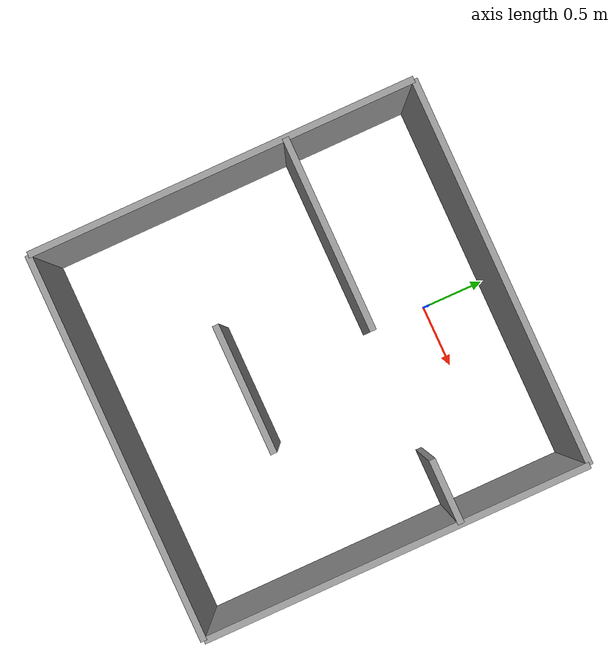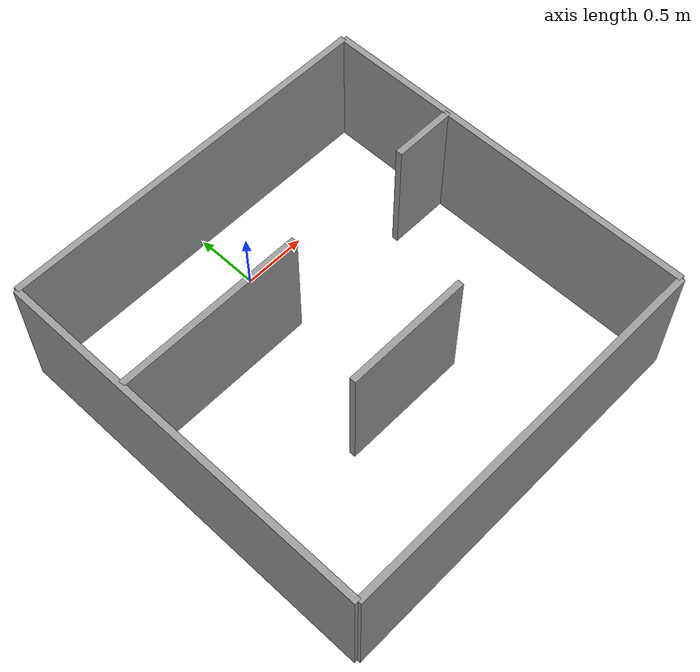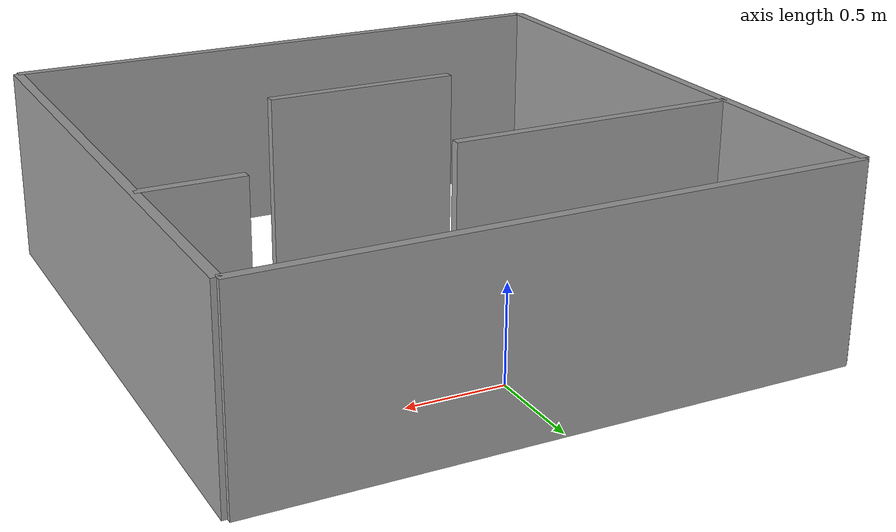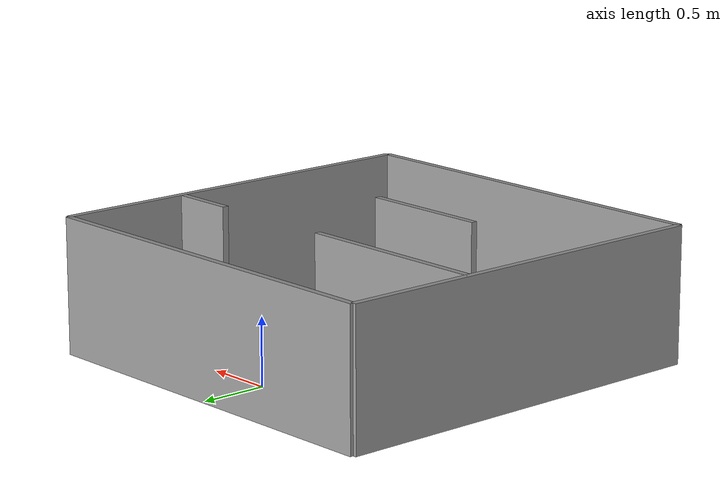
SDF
<?xml version='1.0'?>
<sdf version='1.5'>
  <model name='Circuit_ql_2'>
    <pose frame=''>0 0 0 0 0 0</pose>
    <link name='Wall_4'>
      <collision name='Wall_4_Collision'>
        <geometry>
          <box>
            <size>1 0.05 1</size>
          </box>
        </geometry>
        <pose frame=''>0 0 0.5 0 -0 0</pose>
      </collision>
      <visual name='Wall_4_Visual'>
        <pose frame=''>0 0 0.5 0 -0 0</pose>
        <geometry>
          <box>
            <size>1 0.05 1</size>
          </box>
        </geometry>
        <material>
          <script>
            <uri>file://media/materials/scripts/gazebo.material</uri>
            <name>Gazebo/Grey</name>
          </script>
          <ambient>1 1 1 1</ambient>
        </material>
      </visual>
      <pose frame=''>0 -1.5 0 0 -0 -0 3.14159</pose>
    </link>
    <link name='Wall_1'>
      <collision name='Wall_1_Collision'>
        <geometry>
          <box>
            <size>0.5 0.05 1</size>
          </box>
        </geometry>
        <pose frame=''>0 0 0.5 0 -0 0</pose>
      </collision>
      <visual name='Wall_1_Visual'>
        <pose frame=''>0 0 0.5 0 -0 0</pose>
        <geometry>
          <box>
            <size>0.5 0.05 1</size>
          </box>
        </geometry>
        <material>
          <script>
            <uri>file://media/materials/scripts/gazebo.material</uri>
            <name>Gazebo/Grey</name>
          </script>
          <ambient>1 1 1 1</ambient>
        </material>
      </visual>
      <pose frame=''>1.25 -0.5 0 0 -0 -0 3.14159</pose>
    </link>
    <link name='Wall_16'>
      <collision name='Wall_16_Collision'>
        <geometry>
          <box>
            <size>1.5 0.05 1</size>
          </box>
        </geometry>
        <pose frame=''>0 0 0.5 0 -0 0</pose>
      </collision>
      <visual name='Wall_16_Visual'>
        <pose frame=''>0 0 0.5 0 -0 0</pose>
        <geometry>
          <box>
            <size>1.5 0.05 1</size>
          </box>
        </geometry>
        <material>
          <script>
            <uri>file://media/materials/scripts/gazebo.material</uri>
            <name>Gazebo/Grey</name>
          </script>
          <ambient>1 1 1 1</ambient>
        </material>
      </visual>
      <pose frame=''>-0.75 -0.5 0 0 -0 3.14159</pose>
    </link>
    <link name='Wall_2'>
      <collision name='Wall_2_Collision'>
        <geometry>
          <box>
            <size>3 0.05 1</size>
          </box>
        </geometry>
        <pose frame=''>0 0 0.5 0 -0 0</pose>
      </collision>
      <visual name='Wall_2_Visual'>
        <pose frame=''>0 0 0.5 0 -0 0</pose>
        <geometry>
          <box>
            <size>3 0.05 1</size>
          </box>
        </geometry>
        <material>
          <script>
            <uri>file://media/materials/scripts/gazebo.material</uri>
            <name>Gazebo/Grey</name>
          </script>
          <ambient>1 1 1 1</ambient>
        </material>
      </visual>
      <pose frame=''>-1.5 -1 0 0 0 -1.5708</pose>
    </link>
    <link name='Wall_3'>
      <collision name='Wall_3_Collision'>
        <geometry>
          <box>
            <size>3 0.05 1</size>
          </box>
        </geometry>
        <pose frame=''>0 0 0.5 0 -0 0</pose>
      </collision>
      <visual name='Wall_3_Visual'>
        <pose frame=''>0 0 0.5 0 -0 0</pose>
        <geometry>
          <box>
            <size>3 0.05 1</size>
          </box>
        </geometry>
        <material>
          <script>
            <uri>file://media/materials/scripts/gazebo.material</uri>
            <name>Gazebo/Grey</name>
          </script>
          <ambient>1 1 1 1</ambient>
        </material>
      </visual>
      <pose frame=''>0 -2.5 0 0 -0 0</pose>
    </link>
    <link name='Wall_7'>
      <collision name='Wall_7_Collision'>
        <geometry>
          <box>
            <size>3 0.05 1</size>
          </box>
        </geometry>
        <pose frame=''>0 0 0.5 0 -0 0</pose>
      </collision>
      <visual name='Wall_7_Visual'>
        <pose frame=''>0 0 0.5 0 -0 0</pose>
        <geometry>
          <box>
            <size>3 0.05 1</size>
          </box>
        </geometry>
        <material>
          <script>
            <uri>file://media/materials/scripts/gazebo.material</uri>
            <name>Gazebo/Grey</name>
          </script>
          <ambient>1 1 1 1</ambient>
        </material>
      </visual>
      <pose frame=''>1.5 -1 0 0 -0 1.5708</pose>
    </link>
    <link name='Wall_9'>
      <collision name='Wall_9_Collision'>
        <geometry>
          <box>
            <size>3 0.05 1</size>
          </box>
        </geometry>
        <pose frame=''>0 0 0.5 0 -0 0</pose>
      </collision>
      <visual name='Wall_9_Visual'>
        <pose frame=''>0 0 0.5 0 -0 0</pose>
        <geometry>
          <box>
            <size>3 0.05 1</size>
          </box>
        </geometry>
        <material>
          <script>
            <uri>file://media/materials/scripts/gazebo.material</uri>
            <name>Gazebo/Grey</name>
          </script>
          <ambient>1 1 1 1</ambient>
        </material>
      </visual>
      <pose frame=''>0 0.5 0 0 -0 3.14159</pose>
    </link>
    <static>1</static>
  </model>
</sdf>
